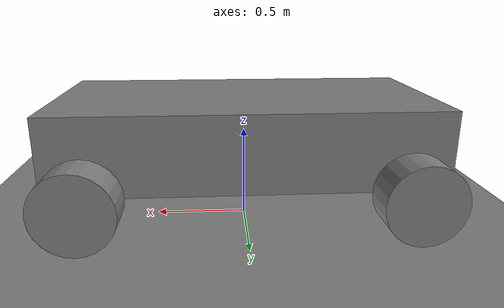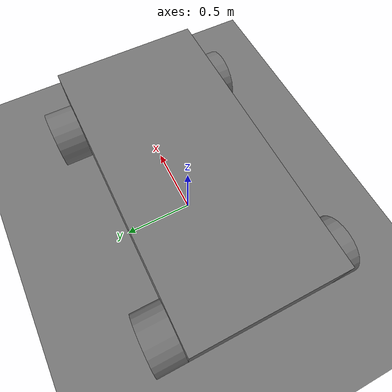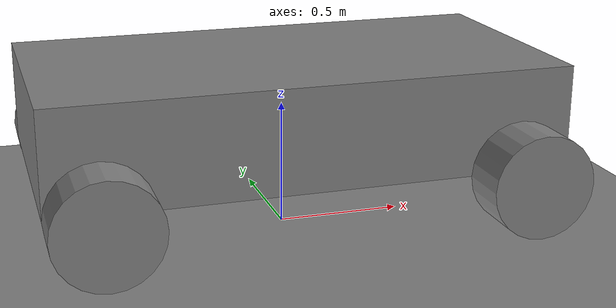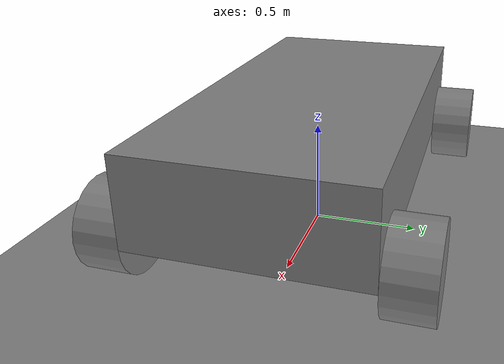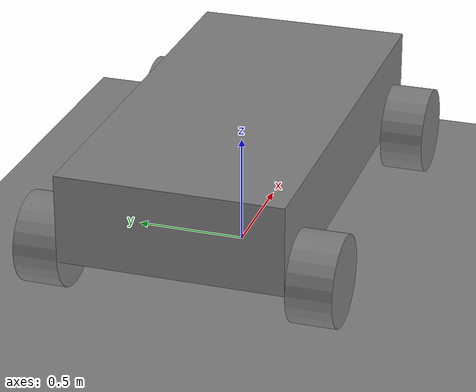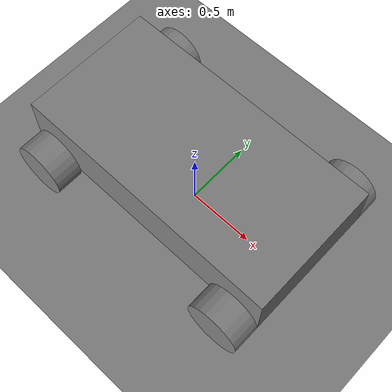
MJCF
<mujoco model="friction_car">

  <option gravity="0 0 -9.81"/>

  <worldbody>
    <light pos="0 0 5" dir="0 0 -1"/>
    <geom name="ground" type="plane" size="30 30 0.1" friction="1.5 0.05 0.01"/>

    <body name="car" pos="0 0 0.5">
      <freejoint/>
      <geom name="car_body" type="box" size="1 0.5 0.2"/>

      <body name="fl_wheel" pos="0.8 0.6 -0.2">
        <joint name="fl_wheel_joint" type="hinge" axis="0 1 0"/>
        <geom type="cylinder" size="0.2 0.1" euler="90 0 0" friction="1.5 0.05 0.1" condim="6"/>
      </body>

      <body name="fr_wheel" pos="0.8 -0.6 -0.2">
        <joint name="fr_wheel_joint" type="hinge" axis="0 1 0"/>
        <geom type="cylinder" size="0.2 0.1" euler="90 0 0" friction="1.5 0.05 0.1" condim="6"/>
      </body>

      <body name="rl_wheel" pos="-0.8 0.6 -0.2">
        <joint name="rl_wheel_joint" type="hinge" axis="0 1 0"/>
        <geom type="cylinder" size="0.2 0.1" euler="90 0 0" friction="1.5 0.05 0.1" condim="6"/>
      </body>

      <body name="rr_wheel" pos="-0.8 -0.6 -0.2">
        <joint name="rr_wheel_joint" type="hinge" axis="0 1 0"/>
        <geom type="cylinder" size="0.2 0.1" euler="90 0 0" friction="1.5 0.05 0.1" condim="6"/>
      </body>

    </body>
  </worldbody>

</mujoco>
